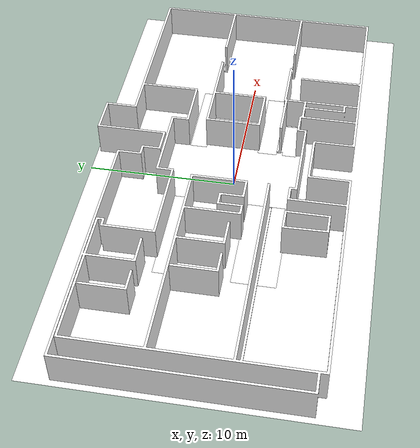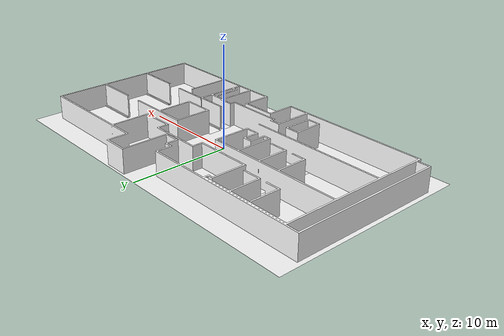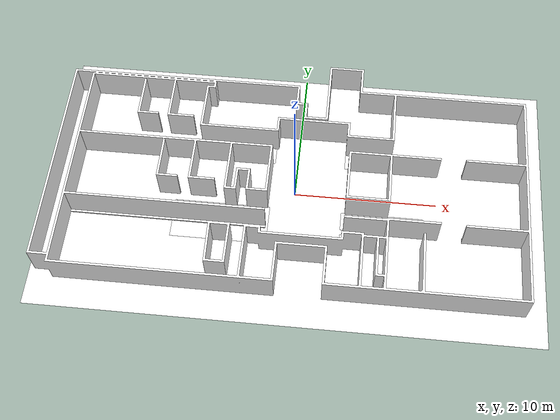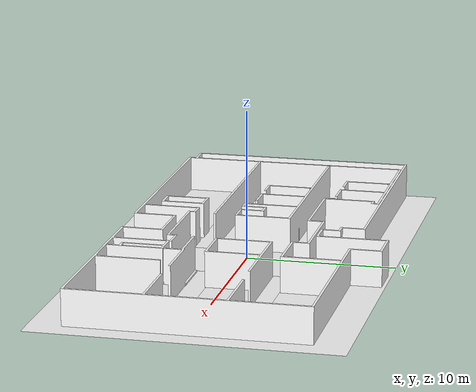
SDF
<sdf version="1.7">
 <world name="default">
  <light name="sun" type="directional">
   <pose>0 0 10 0 -0 0</pose>
   <diffuse>0.8 0.8 0.8 1</diffuse>
   <specular>0.2 0.2 0.2 1</specular>
   <attenuation>
    <range>1000</range>
    <constant>0.9</constant>
    <linear>0.01</linear>
    <quadratic>0.001</quadratic>
   </attenuation>
   <direction>-0.5 0.1 -0.9</direction>
   <spot><inner_angle>0</inner_angle><outer_angle>0</outer_angle><falloff>0</falloff></spot>
  </light>
  <scene>
   <ambient>0.4 0.4 0.4 1</ambient>
   <background>0.7 0.7 0.7 1</background>
   <shadows>1</shadows>
   <grid>0</grid>
  </scene>
  <model name="ground_plane">
   <static>1</static>
   <link name="link">
    <collision name="collision">
     <geometry><plane><normal>0 0 1</normal><size>100 100</size></plane></geometry>
     <surface>
      <contact><collide_bitmask>65535</collide_bitmask></contact>
      <friction><ode><mu>100</mu><mu2>50</mu2></ode></friction>
     </surface>
    </collision>
   </link>
  </model>
  <gravity>0 0 -9.8</gravity>
  <magnetic_field>6e-06 2.3e-05 -4.2e-05</magnetic_field>
  <atmosphere type="adiabatic"/>
  <physics type="ode">
   <max_step_size>0.001</max_step_size>
   <real_time_factor>1</real_time_factor>
   <real_time_update_rate>1000</real_time_update_rate>
  </physics>
  <audio><device>default</device></audio>
  <spherical_coordinates>
   <surface_model>EARTH_WGS84</surface_model>
   <latitude_deg>0</latitude_deg>
   <longitude_deg>0</longitude_deg>
   <elevation>0</elevation>
   <heading_deg>0</heading_deg>
  </spherical_coordinates>
  <plugin filename="gz-sim-sensors-system" name="gz::sim::systems::Sensors">
   <render_engine>ogre2</render_engine>
  </plugin>
  <plugin filename="gz-sim-user-commands-system" name="gz::sim::systems::UserCommands"/>
  <plugin filename="gz-sim-scene-broadcaster-system" name="gz::sim::systems::SceneBroadcaster"/>
  <include><uri>model://gz_ekumen_worlds/models/ekumen_hq4</uri></include>
 </world>
</sdf>

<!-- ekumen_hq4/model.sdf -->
<sdf version="1.6">
  <model name='ekumen_hq4'>
    <static>1</static>
    <link name='walls'>
      <collision name='collision'>
        <geometry>
          <mesh>
            <scale>1 1 1</scale>
            <uri>meshes/walls.dae</uri>
          </mesh>
        </geometry>
        <surface>
          <friction>
            <ode/>
          </friction>
          <bounce/>
          <contact/>
        </surface>
      </collision>
      <visual name='visual'>
        <geometry>
          <mesh>
            <scale>1 1 1</scale>
            <uri>meshes/walls.dae</uri>
          </mesh>
        </geometry>
        <material>
          <diffuse>1 1 1 1</diffuse>
          <specular>0 0 0 0</specular>
          <pbr>
            <metal>
              <albedo_map>materials/textures/walls/macro_flour_diff_4k.jpg</albedo_map>
              <normal_map>materials/textures/walls/macro_flour_nor_gl_4k.exr</normal_map>
              <roughness_map>materials/textures/walls/macro_flour_rough_4k.exr</roughness_map>
              <metalness>0.</metalness>
            </metal>
          </pbr>
        </material>
      </visual>
    </link>
    <link name='wood_floor'>
      <visual name='visual'>
        <geometry>
          <mesh>
            <scale>1 1 1</scale>
            <uri>meshes/wood.dae</uri>
          </mesh>
        </geometry>
        <material>
          <diffuse>1 1 1 1</diffuse>
          <specular>1 1 1 1</specular>
          <pbr>
            <metal>
              <albedo_map>materials/textures/wood/wood_floor_diff_4k.jpg</albedo_map>
              <normal_map>materials/textures/wood/wood_floor_nor_gl_4k.exr</normal_map>
              <roughness_map>materials/textures/wood/wood_floor_rough_4k.exr</roughness_map>
              <metalness>0.</metalness>
            </metal>
          </pbr>
        </material>
      </visual>
    </link>
    <link name='tiles'>
      <visual name='visual'>
        <geometry>
          <mesh>
            <scale>1 1 1</scale>
            <uri>meshes/tiles.dae</uri>
          </mesh>
        </geometry>
        <material>
          <diffuse>1 1 1 1</diffuse>
          <specular>1 1 1 1</specular>
          <pbr>
            <metal>
              <albedo_map>materials/textures/tiles/Tiles054_1K-JPG_Color.jpg</albedo_map>
              <normal_map>materials/textures/tiles/Tiles054_1K-JPG_NormalDX.jpg</normal_map>
              <roughness_map>materials/textures/tiles/Tiles054_1K-JPG_Roughness.jpg</roughness_map>
              <metalness>0.</metalness>
            </metal>
          </pbr>
        </material>
      </visual>
    </link>
    <pose>0 0 0 0 0 0</pose>
  </model>
</sdf>
